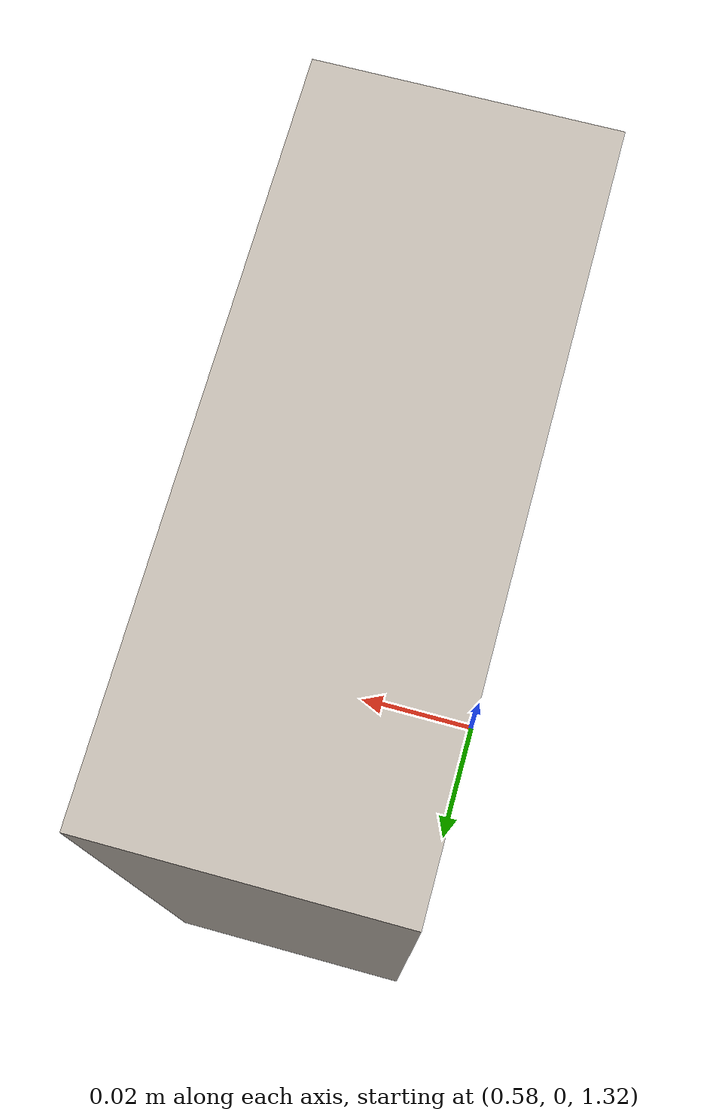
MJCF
<mujoco model="boxed_food_16">
  <asset>
    <mesh file="../objects/bigym/boxed_food_11/visual/model_normalized_0.obj" name="model_normalized_0_vis" scale="0.10999999999999996 0.10999999999999996 0.10999999999999996" refquat="-2.220446049250313e-16 0.0 0.0 1.0" />
    <texture type="2d" name="boxed_food_11_image0" file="../objects/bigym/boxed_food_11/visual/image0.png" />
    <material name="Material.178" texture="boxed_food_11_image0" specular="0.5" shininess="0.25" />
  </asset>

  <worldbody>
    <body pos="0.6 0 1.38">
      <freejoint/>
      <body name="boxed_food_11_object">
        <geom solimp="0.998 0.998 0.001" solref="0.001 1" density="100" friction="0.95 0.3 0.1" type="mesh" mesh="model_normalized_0_vis" conaffinity="0" contype="0" group="1" material="Material.178" />
        <geom condim="6" solimp="0.998 0.998 0.001" solref="0.001 1" density="100" friction="0.95 0.3 0.1" type="box" group="0" rgba="0.8 0.8 0.8 0.0" size="0.018333328214496722 0.045833330436240584 0.05499999999999998" pos="0.0 0.0 0.0" />
      </body>
      <site rgba="0 0 0 0" size="0.005" pos="0.0 0.0 -0.05499999999999998" name="bottom_site" />
      <site rgba="0 0 0 0" size="0.005" pos="0.0 0.0 0.05499999999999998" name="top_site" />
      <site rgba="0 0 0 0" size="0.005" pos="0.018333328214496722 0.045833330436240584 0.0" name="horizontal_radius_site" />
    </body>
  </worldbody>
</mujoco>
